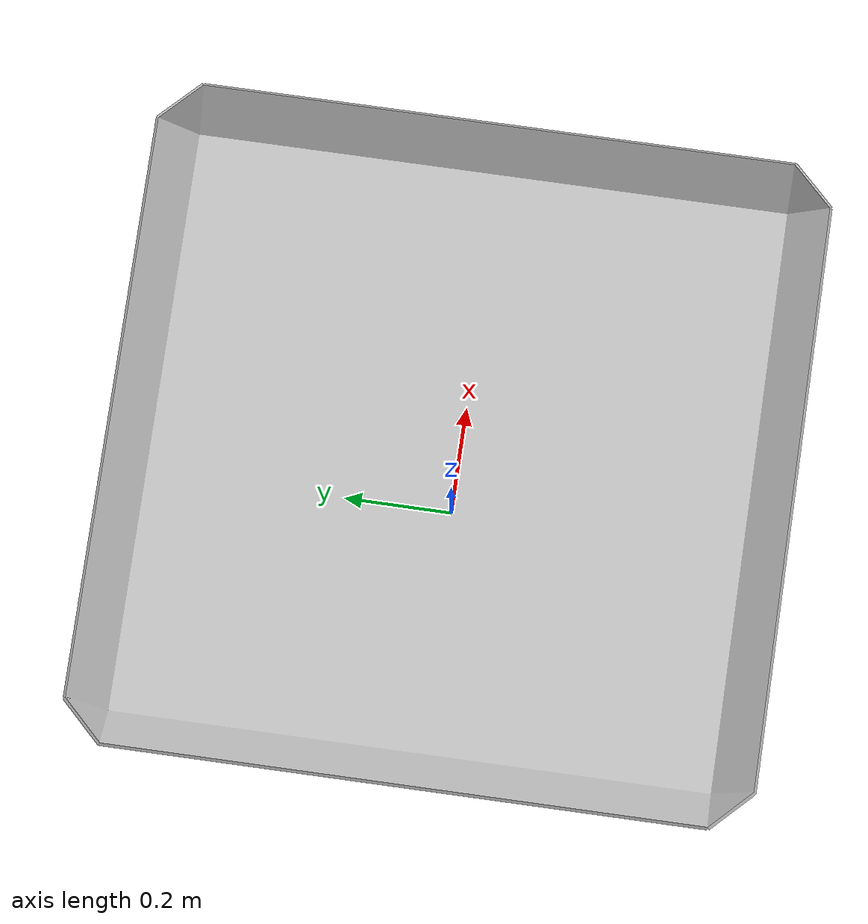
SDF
<?xml version="1.0" ?>
<sdf version="1.5">
  <model name="cart_1">
    <link name="link">
      <pose>0 0 0 0 0 0</pose>
      <inertial>
        <mass>50.0</mass>
        <inertia>
          <ixx>2.43</ixx>
          <ixy>0</ixy>
          <ixz>0</ixz>
          <iyy>1.10</iyy>
          <iyz>0</iyz>
          <izz>3.47</izz>
        </inertia>
      </inertial>
      <collision name="collision">
        <pose>0 0 0.05 0 0 0</pose>
        <geometry>
          <mesh>
            <uri>model://cart_1/meshes/cart_1.dae</uri>
            <scale>1 1 1</scale>
          </mesh>
        </geometry>
      </collision>
      <visual name="visual">
        <pose>0 0 0.0 0 0 0</pose>
        <geometry>
          <mesh>
            <uri>model://cart_1/meshes/cart_1.dae</uri>
            <scale>1 1 1</scale>
          </mesh>
        </geometry>
      </visual>
    </link>
  </model>
</sdf>
